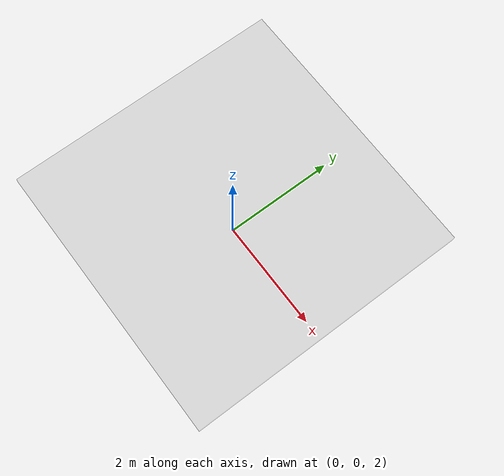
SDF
<sdf version="1.5">
  <model name="Robot">
    <link name="Robot">
      <visual name="visual_Ceiling">
        <pose>0.0 0.0 3.0 0.0 0.0 0.0</pose>
        <geometry>
          <box>
            <size>5.0 5.0 0.10000000149011612</size>
          </box>
        </geometry>
        <material>
          <diffuse>0.5 0.5 0.5 0.1</diffuse>
        </material>

      </visual>
      <collision name="collision_Ceiling">
        <pose>0.0 0.0 3.0 0.0 0.0 0.0</pose>
        <geometry>
          <box>
            <size>5.0 5.0 0.10000000149011612</size>
          </box>
        </geometry>
      </collision>
    </link>
  </model>
</sdf>
